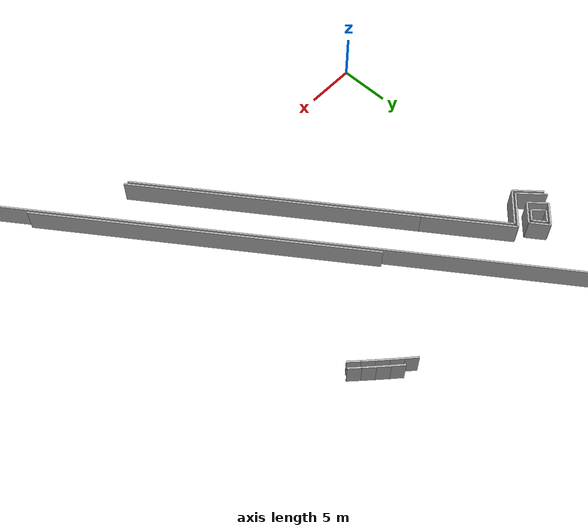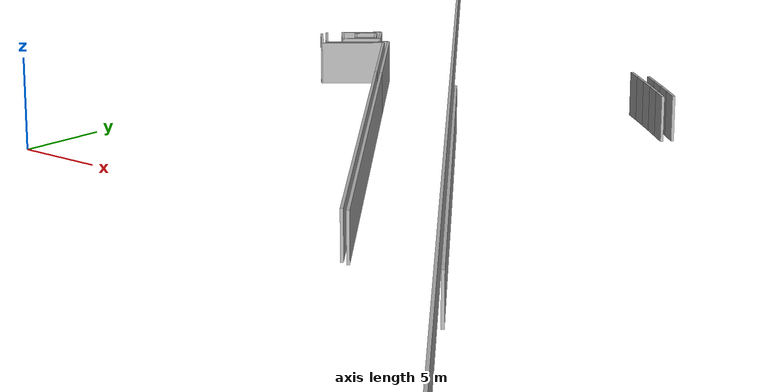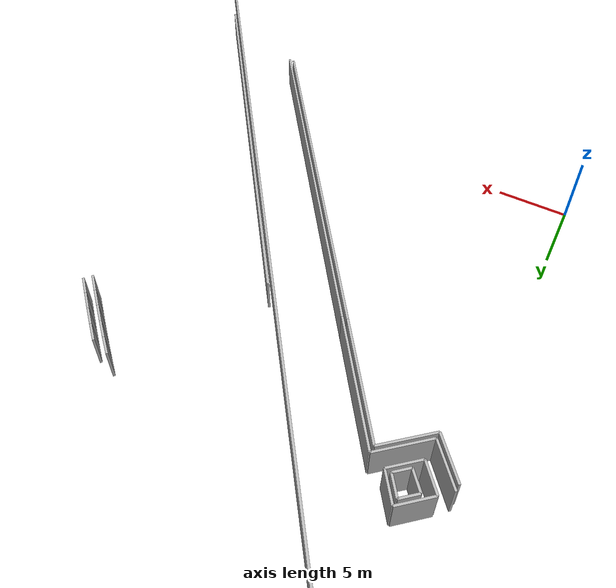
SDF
<sdf version="1.6">
 <model name="sps_0605">
  <static>1</static>
  <allow_auto_disable>0</allow_auto_disable>
  <link name="Wall117">
   <collision name="collision"><geometry><box><size>2.0003 0.15 2.5</size></box></geometry></collision>
   <visual name="visual">
    <geometry><box><size>2.0003 0.15 2.5</size></box></geometry>
    <transparency>0.0</transparency>
   </visual>
   <pose>1.11346 24.7877 1.25 0 0 -0.853026</pose>
  </link>
  <link name="Wall127">
   <collision name="collision"><geometry><box><size>8.356 0.15 2.5</size></box></geometry></collision>
   <visual name="visual">
    <geometry><box><size>8.356 0.15 2.5</size></box></geometry>
    <transparency>0.0</transparency>
   </visual>
   <pose>6.90592 21.267 1.25 0 0 -0.939968</pose>
  </link>
  <link name="Wall128">
   <collision name="collision"><geometry><box><size>27.8134 0.15 2.5</size></box></geometry></collision>
   <visual name="visual">
    <geometry><box><size>27.8134 0.15 2.5</size></box></geometry>
    <transparency>0.0</transparency>
   </visual>
   <pose>17.5725 6.66289 1.25 0 0 -0.939968</pose>
  </link>
  <link name="Wall142">
   <collision name="collision"><geometry><box><size>32.8988 0.15 2.5</size></box></geometry></collision>
   <visual name="visual">
    <geometry><box><size>32.8988 0.15 2.5</size></box></geometry>
    <transparency>0.0</transparency>
   </visual>
   <pose>24.7676 4.60935 1.25 0 -0 2.2016</pose>
  </link>
  <link name="Wall505">
   <collision name="collision"><geometry><box><size>1.39976 0.15 2.5</size></box></geometry></collision>
   <visual name="visual">
    <geometry><box><size>1.39976 0.15 2.5</size></box></geometry>
    <transparency>0.0</transparency>
   </visual>
   <pose>1.71596 25.3137 1.25 0 -0 2.28813</pose>
  </link>
  <link name="Wall506">
   <collision name="collision"><geometry><box><size>2.00751 0.15 2.5</size></box></geometry></collision>
   <visual name="visual">
    <geometry><box><size>2.00751 0.15 2.5</size></box></geometry>
    <transparency>0.0</transparency>
   </visual>
   <pose>2.85378 26.3078 1.25 0 -0 2.20172</pose>
  </link>
  <link name="Wall515">
   <collision name="collision"><geometry><box><size>27.8982 0.15 2.5</size></box></geometry></collision>
   <visual name="visual">
    <geometry><box><size>27.8982 0.15 2.5</size></box></geometry>
    <transparency>0.0</transparency>
   </visual>
   <pose>17.9696 6.62858 1.25 0 -0 2.20162</pose>
  </link>
  <link name="Wall516">
   <collision name="collision"><geometry><box><size>8.90203 0.15 2.5</size></box></geometry></collision>
   <visual name="visual">
    <geometry><box><size>8.90203 0.15 2.5</size></box></geometry>
    <transparency>0.0</transparency>
   </visual>
   <pose>7.11708 21.4875 1.25 0 -0 2.20162</pose>
  </link>
  <link name="Wall840">
   <collision name="collision"><geometry><box><size>1.26984 0.15 2.5</size></box></geometry></collision>
   <visual name="visual">
    <geometry><box><size>1.26984 0.15 2.5</size></box></geometry>
    <transparency>0.0</transparency>
   </visual>
   <pose>1.73406 26.2588 1.25 0 -0 0.717984</pose>
  </link>
  <link name="Wall841">
   <collision name="collision"><geometry><box><size>2.39778 0.15 2.5</size></box></geometry></collision>
   <visual name="visual">
    <geometry><box><size>2.39778 0.15 2.5</size></box></geometry>
    <transparency>0.0</transparency>
   </visual>
   <pose>1.35866 26.3297 1.25 0 0 -2.42373</pose>
  </link>
  <link name="Wall1246">
   <collision name="collision"><geometry><box><size>3.00047 0.15 2.5</size></box></geometry></collision>
   <visual name="visual">
    <geometry><box><size>3.00047 0.15 2.5</size></box></geometry>
    <transparency>0.0</transparency>
   </visual>
   <pose>0.65966 23.3303 1.25 0 0 -0.853126</pose>
  </link>
  <link name="Wall1247">
   <collision name="collision"><geometry><box><size>3.00035 0.15 2.5</size></box></geometry></collision>
   <visual name="visual">
    <geometry><box><size>3.00035 0.15 2.5</size></box></geometry>
    <transparency>0.0</transparency>
   </visual>
   <pose>0.68856 23.7533 1.25 0 -0 2.28842</pose>
  </link>
  <link name="Wall1249">
   <collision name="collision"><geometry><box><size>1.14843 0.15 2.5</size></box></geometry></collision>
   <visual name="visual">
    <geometry><box><size>1.14843 0.15 2.5</size></box></geometry>
    <transparency>0.0</transparency>
   </visual>
   <pose>2.60854 25.164 1.25 0 0 -2.4237</pose>
  </link>
  <link name="Wall1852">
   <collision name="collision"><geometry><box><size>1.4052 0.15 2.5</size></box></geometry></collision>
   <visual name="visual">
    <geometry><box><size>1.4052 0.15 2.5</size></box></geometry>
    <transparency>0.0</transparency>
   </visual>
   <pose>2.62664 26.1091 1.25 0 0 -0.939979</pose>
  </link>
  <link name="Wall2195">
   <collision name="collision"><geometry><box><size>2.22364 0.15 2.5</size></box></geometry></collision>
   <visual name="visual">
    <geometry><box><size>2.22364 0.15 2.5</size></box></geometry>
    <transparency>0.0</transparency>
   </visual>
   <pose>2.60857 24.7658 1.25 0 -0 0.718037</pose>
  </link>
  <link name="Wall2196">
   <collision name="collision"><geometry><box><size>3.71104 0.15 2.5</size></box></geometry></collision>
   <visual name="visual">
    <geometry><box><size>3.71104 0.15 2.5</size></box></geometry>
    <transparency>0.0</transparency>
   </visual>
   <pose>3.04397 23.4205 1.25 0 -0 0.717778</pose>
  </link>
  <link name="Wall2197">
   <collision name="collision"><geometry><box><size>3.73893 0.15 2.5</size></box></geometry></collision>
   <visual name="visual">
    <geometry><box><size>3.73893 0.15 2.5</size></box></geometry>
    <transparency>0.0</transparency>
   </visual>
   <pose>3.08346 23.8525 1.25 0 0 -2.42396</pose>
  </link>
  <link name="Wall7070">
   <collision name="collision"><geometry><box><size>1.25408 0.15 2.5</size></box></geometry></collision>
   <visual name="visual">
    <geometry><box><size>1.25408 0.15 2.5</size></box></geometry>
    <transparency>0.0</transparency>
   </visual>
   <pose>25.3319 23.651 1.25 0 -0 2.38576</pose>
  </link>
  <link name="Wall7071">
   <collision name="collision"><geometry><box><size>1.25445 0.15 2.5</size></box></geometry></collision>
   <visual name="visual">
    <geometry><box><size>1.25445 0.15 2.5</size></box></geometry>
    <transparency>0.0</transparency>
   </visual>
   <pose>24.4155 24.5073 1.25 0 -0 2.3945</pose>
  </link>
  <link name="Wall7072">
   <collision name="collision"><geometry><box><size>1.25441 0.15 2.5</size></box></geometry></collision>
   <visual name="visual">
    <geometry><box><size>1.25441 0.15 2.5</size></box></geometry>
    <transparency>0.0</transparency>
   </visual>
   <pose>23.4914 25.3556 1.25 0 -0 2.40338</pose>
  </link>
  <link name="Wall7073">
   <collision name="collision"><geometry><box><size>1.25412 0.15 2.5</size></box></geometry></collision>
   <visual name="visual">
    <geometry><box><size>1.25412 0.15 2.5</size></box></geometry>
    <transparency>0.0</transparency>
   </visual>
   <pose>22.5599 26.1956 1.25 0 -0 2.41215</pose>
  </link>
  <link name="Wall13100">
   <collision name="collision"><geometry><box><size>138.373 0.15 2.5</size></box></geometry></collision>
   <visual name="visual">
    <geometry><box><size>138.373 0.15 2.5</size></box></geometry>
    <transparency>0.0</transparency>
   </visual>
   <pose>19.908 10.7553 1.25 0 0 -0.939993</pose>
  </link>
  <link name="Wall19380">
   <collision name="collision"><geometry><box><size>1.25209 0.15 2.5</size></box></geometry></collision>
   <visual name="visual">
    <geometry><box><size>1.25209 0.15 2.5</size></box></geometry>
    <transparency>0.0</transparency>
   </visual>
   <pose>24.9404 23.196 1.25 0 -0 2.38553</pose>
  </link>
  <link name="Wall19381">
   <collision name="collision"><geometry><box><size>1.25225 0.15 2.5</size></box></geometry></collision>
   <visual name="visual">
    <geometry><box><size>1.25225 0.15 2.5</size></box></geometry>
    <transparency>0.0</transparency>
   </visual>
   <pose>24.0256 24.051 1.25 0 -0 2.39439</pose>
  </link>
  <link name="Wall19382">
   <collision name="collision"><geometry><box><size>1.25219 0.15 2.5</size></box></geometry></collision>
   <visual name="visual">
    <geometry><box><size>1.25219 0.15 2.5</size></box></geometry>
    <transparency>0.0</transparency>
   </visual>
   <pose>23.1033 24.898 1.25 0 -0 2.40309</pose>
  </link>
  <link name="Wall19383">
   <collision name="collision"><geometry><box><size>1.25212 0.15 2.5</size></box></geometry></collision>
   <visual name="visual">
    <geometry><box><size>1.25212 0.15 2.5</size></box></geometry>
    <transparency>0.0</transparency>
   </visual>
   <pose>22.1736 25.7368 1.25 0 -0 2.41203</pose>
  </link>
  <link name="Wall19384">
   <collision name="collision"><geometry><box><size>1.25241 0.15 2.5</size></box></geometry></collision>
   <visual name="visual">
    <geometry><box><size>1.25241 0.15 2.5</size></box></geometry>
    <transparency>0.0</transparency>
   </visual>
   <pose>21.2364 26.5673 1.25 0 -0 2.42096</pose>
  </link>
 </model>
</sdf>
